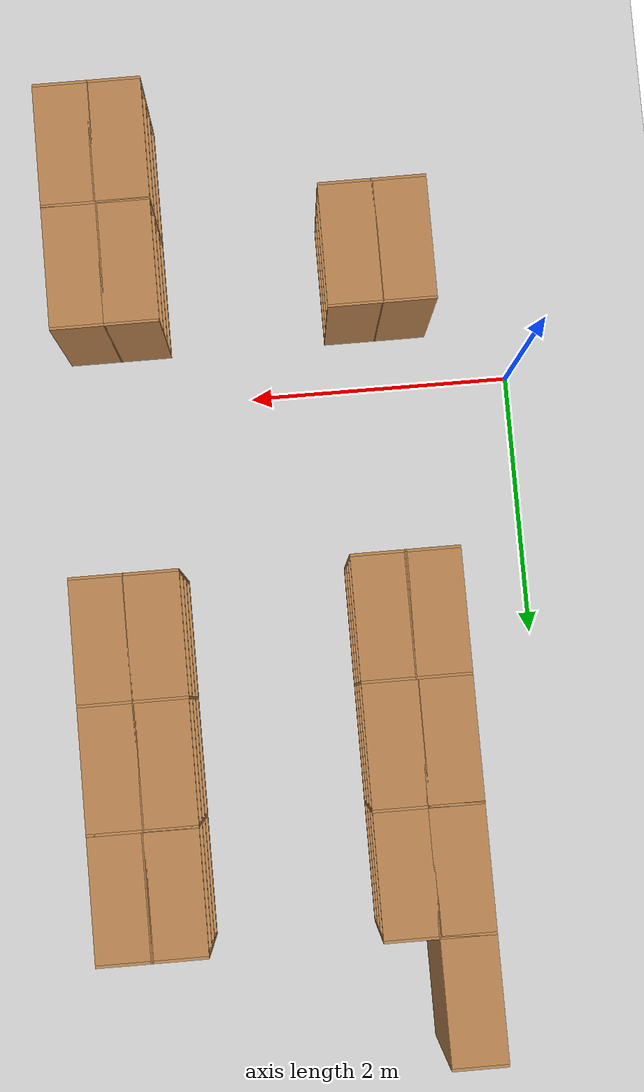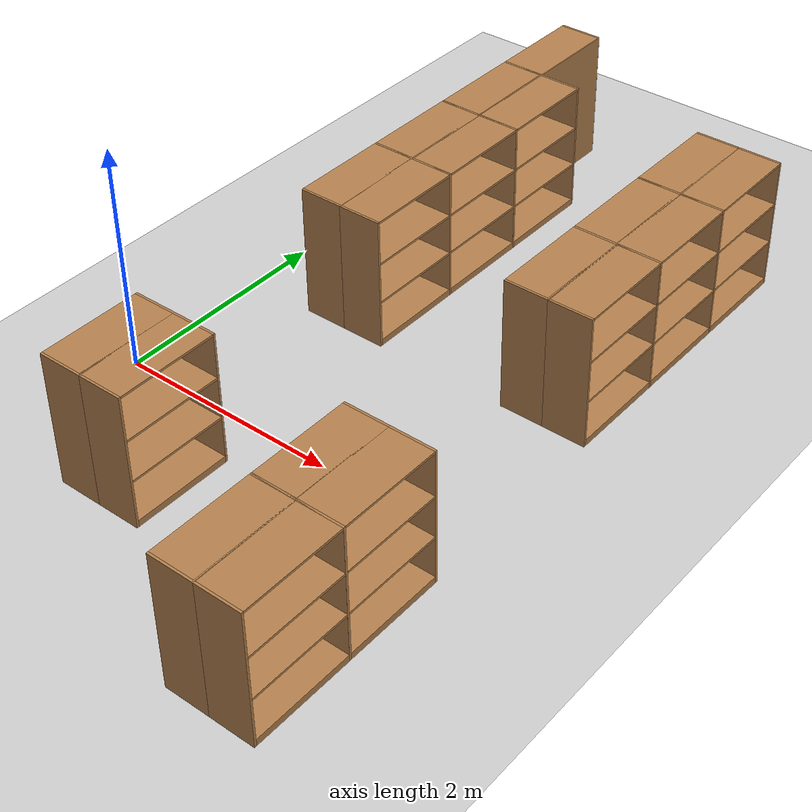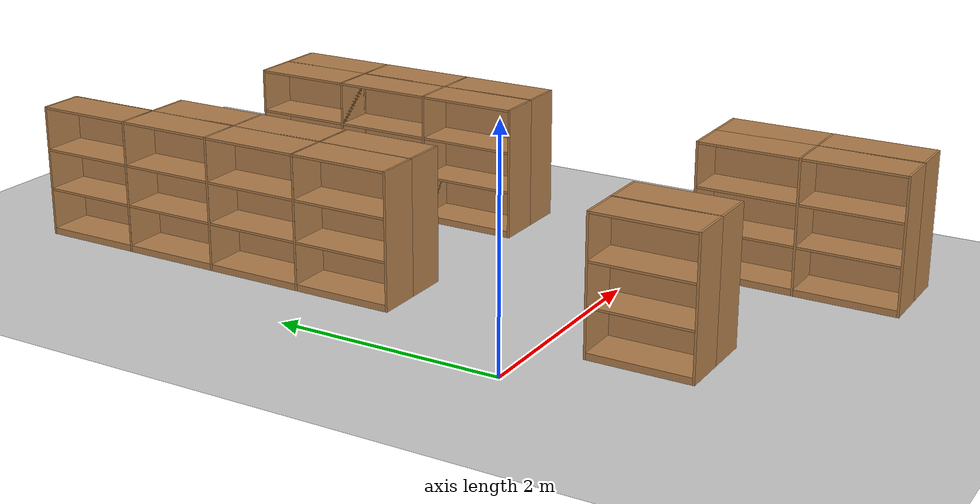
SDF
<sdf version="1.7">
 <world name="default">
  <model name="ground_plane">
   <static>1</static>
   <link name="link">
    <collision name="collision">
     <geometry><plane><normal>0 0 1</normal><size>100 100</size></plane></geometry>
     <surface><friction><ode><mu>100</mu><mu2>50</mu2></ode></friction></surface>
    </collision>
    <visual name="visual">
     <cast_shadows>0</cast_shadows>
     <geometry><plane><normal>0 0 1</normal><size>100 100</size></plane></geometry>
     <material>
      <script><uri>file://media/materials/scripts/gazebo.material</uri><name>Gazebo/Grey</name></script>
     </material>
    </visual>
   </link>
  </model>
  <model name="sec3_A_1">
   <static>1</static>
   <link name="link">
    <inertial><mass>1</mass></inertial>
    <visual name="visual1">
     <pose>0 0.005 0.6 0 -0 0</pose>
     <geometry><box><size>0.9 0.01 1.2</size></box></geometry>
     <material>
      <script><uri>file://media/materials/scripts/gazebo.material</uri><name>Gazebo/Wood</name></script>
     </material>
    </visual>
    <visual name="visual2">
     <pose>0.45 -0.195 0.6 0 -0 0</pose>
     <geometry><box><size>0.02 0.4 1.2</size></box></geometry>
     <material>
      <script><uri>file://media/materials/scripts/gazebo.material</uri><name>Gazebo/Wood</name></script>
     </material>
    </visual>
    <visual name="visual3">
     <pose>-0.45 -0.195 0.6 0 -0 0</pose>
     <geometry><box><size>0.02 0.4 1.2</size></box></geometry>
     <material>
      <script><uri>file://media/materials/scripts/gazebo.material</uri><name>Gazebo/Wood</name></script>
     </material>
    </visual>
    <visual name="visual4">
     <pose>0 -0.195 0.03 0 -0 0</pose>
     <geometry><box><size>0.88 0.4 0.06</size></box></geometry>
     <material>
      <script><uri>file://media/materials/scripts/gazebo.material</uri><name>Gazebo/Wood</name></script>
     </material>
    </visual>
    <visual name="visual5">
     <pose>0 -0.195 1.19 0 -0 0</pose>
     <geometry><box><size>0.88 0.4 0.02</size></box></geometry>
     <material>
      <script><uri>file://media/materials/scripts/gazebo.material</uri><name>Gazebo/Wood</name></script>
     </material>
    </visual>
    <visual name="visual6">
     <pose>0 -0.195 0.43 0 -0 0</pose>
     <geometry><box><size>0.88 0.4 0.02</size></box></geometry>
     <material>
      <script><uri>file://media/materials/scripts/gazebo.material</uri><name>Gazebo/Wood</name></script>
     </material>
    </visual>
    <visual name="visual7">
     <pose>0 -0.195 0.8 0 -0 0</pose>
     <geometry><box><size>0.88 0.4 0.02</size></box></geometry>
     <material>
      <script><uri>file://media/materials/scripts/gazebo.material</uri><name>Gazebo/Wood</name></script>
     </material>
    </visual>
    <collision name="unified_hitbox">
     <pose>0 -0.1925 0.6 0 -0 0</pose>
     <geometry><box><size>0.92 0.405 1.2</size></box></geometry>
    </collision>
   </link>
   <pose>3 3.65 0 0 -0 1.57</pose>
  </model>
  <model name="sec3_A_2">
   <static>1</static>
   <link name="link">
    <inertial><mass>1</mass></inertial>
    <visual name="visual1">
     <pose>0 0.005 0.6 0 -0 0</pose>
     <geometry><box><size>0.9 0.01 1.2</size></box></geometry>
     <material>
      <script><uri>file://media/materials/scripts/gazebo.material</uri><name>Gazebo/Wood</name></script>
     </material>
    </visual>
    <visual name="visual2">
     <pose>0.45 -0.195 0.6 0 -0 0</pose>
     <geometry><box><size>0.02 0.4 1.2</size></box></geometry>
     <material>
      <script><uri>file://media/materials/scripts/gazebo.material</uri><name>Gazebo/Wood</name></script>
     </material>
    </visual>
    <visual name="visual3">
     <pose>-0.45 -0.195 0.6 0 -0 0</pose>
     <geometry><box><size>0.02 0.4 1.2</size></box></geometry>
     <material>
      <script><uri>file://media/materials/scripts/gazebo.material</uri><name>Gazebo/Wood</name></script>
     </material>
    </visual>
    <visual name="visual4">
     <pose>0 -0.195 0.03 0 -0 0</pose>
     <geometry><box><size>0.88 0.4 0.06</size></box></geometry>
     <material>
      <script><uri>file://media/materials/scripts/gazebo.material</uri><name>Gazebo/Wood</name></script>
     </material>
    </visual>
    <visual name="visual5">
     <pose>0 -0.195 1.19 0 -0 0</pose>
     <geometry><box><size>0.88 0.4 0.02</size></box></geometry>
     <material>
      <script><uri>file://media/materials/scripts/gazebo.material</uri><name>Gazebo/Wood</name></script>
     </material>
    </visual>
    <visual name="visual6">
     <pose>0 -0.195 0.43 0 -0 0</pose>
     <geometry><box><size>0.88 0.4 0.02</size></box></geometry>
     <material>
      <script><uri>file://media/materials/scripts/gazebo.material</uri><name>Gazebo/Wood</name></script>
     </material>
    </visual>
    <visual name="visual7">
     <pose>0 -0.195 0.8 0 -0 0</pose>
     <geometry><box><size>0.88 0.4 0.02</size></box></geometry>
     <material>
      <script><uri>file://media/materials/scripts/gazebo.material</uri><name>Gazebo/Wood</name></script>
     </material>
    </visual>
    <collision name="unified_hitbox">
     <pose>0 -0.1925 0.6 0 -0 0</pose>
     <geometry><box><size>0.92 0.405 1.2</size></box></geometry>
    </collision>
   </link>
   <pose>3 2.75 0 0 -0 1.57</pose>
  </model>
  <model name="sec3_B_1">
   <static>1</static>
   <link name="link">
    <inertial><mass>1</mass></inertial>
    <visual name="visual1">
     <pose>0 0.005 0.6 0 -0 0</pose>
     <geometry><box><size>0.9 0.01 1.2</size></box></geometry>
     <material>
      <script><uri>file://media/materials/scripts/gazebo.material</uri><name>Gazebo/Wood</name></script>
     </material>
    </visual>
    <visual name="visual2">
     <pose>0.45 -0.195 0.6 0 -0 0</pose>
     <geometry><box><size>0.02 0.4 1.2</size></box></geometry>
     <material>
      <script><uri>file://media/materials/scripts/gazebo.material</uri><name>Gazebo/Wood</name></script>
     </material>
    </visual>
    <visual name="visual3">
     <pose>-0.45 -0.195 0.6 0 -0 0</pose>
     <geometry><box><size>0.02 0.4 1.2</size></box></geometry>
     <material>
      <script><uri>file://media/materials/scripts/gazebo.material</uri><name>Gazebo/Wood</name></script>
     </material>
    </visual>
    <visual name="visual4">
     <pose>0 -0.195 0.03 0 -0 0</pose>
     <geometry><box><size>0.88 0.4 0.06</size></box></geometry>
     <material>
      <script><uri>file://media/materials/scripts/gazebo.material</uri><name>Gazebo/Wood</name></script>
     </material>
    </visual>
    <visual name="visual5">
     <pose>0 -0.195 1.19 0 -0 0</pose>
     <geometry><box><size>0.88 0.4 0.02</size></box></geometry>
     <material>
      <script><uri>file://media/materials/scripts/gazebo.material</uri><name>Gazebo/Wood</name></script>
     </material>
    </visual>
    <visual name="visual6">
     <pose>0 -0.195 0.43 0 -0 0</pose>
     <geometry><box><size>0.88 0.4 0.02</size></box></geometry>
     <material>
      <script><uri>file://media/materials/scripts/gazebo.material</uri><name>Gazebo/Wood</name></script>
     </material>
    </visual>
    <visual name="visual7">
     <pose>0 -0.195 0.8 0 -0 0</pose>
     <geometry><box><size>0.88 0.4 0.02</size></box></geometry>
     <material>
      <script><uri>file://media/materials/scripts/gazebo.material</uri><name>Gazebo/Wood</name></script>
     </material>
    </visual>
    <collision name="unified_hitbox">
     <pose>0 -0.1925 0.6 0 -0 0</pose>
     <geometry><box><size>0.92 0.405 1.2</size></box></geometry>
    </collision>
   </link>
   <pose>3 3.65 0 0 0 -1.57</pose>
  </model>
  <model name="sec3_B_2">
   <static>1</static>
   <link name="link">
    <inertial><mass>1</mass></inertial>
    <visual name="visual1">
     <pose>0 0.005 0.6 0 -0 0</pose>
     <geometry><box><size>0.9 0.01 1.2</size></box></geometry>
     <material>
      <script><uri>file://media/materials/scripts/gazebo.material</uri><name>Gazebo/Wood</name></script>
     </material>
    </visual>
    <visual name="visual2">
     <pose>0.45 -0.195 0.6 0 -0 0</pose>
     <geometry><box><size>0.02 0.4 1.2</size></box></geometry>
     <material>
      <script><uri>file://media/materials/scripts/gazebo.material</uri><name>Gazebo/Wood</name></script>
     </material>
    </visual>
    <visual name="visual3">
     <pose>-0.45 -0.195 0.6 0 -0 0</pose>
     <geometry><box><size>0.02 0.4 1.2</size></box></geometry>
     <material>
      <script><uri>file://media/materials/scripts/gazebo.material</uri><name>Gazebo/Wood</name></script>
     </material>
    </visual>
    <visual name="visual4">
     <pose>0 -0.195 0.03 0 -0 0</pose>
     <geometry><box><size>0.88 0.4 0.06</size></box></geometry>
     <material>
      <script><uri>file://media/materials/scripts/gazebo.material</uri><name>Gazebo/Wood</name></script>
     </material>
    </visual>
    <visual name="visual5">
     <pose>0 -0.195 1.19 0 -0 0</pose>
     <geometry><box><size>0.88 0.4 0.02</size></box></geometry>
     <material>
      <script><uri>file://media/materials/scripts/gazebo.material</uri><name>Gazebo/Wood</name></script>
     </material>
    </visual>
    <visual name="visual6">
     <pose>0 -0.195 0.43 0 -0 0</pose>
     <geometry><box><size>0.88 0.4 0.02</size></box></geometry>
     <material>
      <script><uri>file://media/materials/scripts/gazebo.material</uri><name>Gazebo/Wood</name></script>
     </material>
    </visual>
    <visual name="visual7">
     <pose>0 -0.195 0.8 0 -0 0</pose>
     <geometry><box><size>0.88 0.4 0.02</size></box></geometry>
     <material>
      <script><uri>file://media/materials/scripts/gazebo.material</uri><name>Gazebo/Wood</name></script>
     </material>
    </visual>
    <collision name="unified_hitbox">
     <pose>0 -0.1925 0.6 0 -0 0</pose>
     <geometry><box><size>0.92 0.405 1.2</size></box></geometry>
    </collision>
   </link>
   <pose>3 2.75 0 0 0 -1.57</pose>
  </model>
  <model name="sec1_A_1">
   <static>1</static>
   <link name="link">
    <inertial><mass>1</mass></inertial>
    <visual name="visual1">
     <pose>0 0.005 0.6 0 -0 0</pose>
     <geometry><box><size>0.9 0.01 1.2</size></box></geometry>
     <material>
      <script><uri>file://media/materials/scripts/gazebo.material</uri><name>Gazebo/Wood</name></script>
     </material>
    </visual>
    <visual name="visual2">
     <pose>0.45 -0.195 0.6 0 -0 0</pose>
     <geometry><box><size>0.02 0.4 1.2</size></box></geometry>
     <material>
      <script><uri>file://media/materials/scripts/gazebo.material</uri><name>Gazebo/Wood</name></script>
     </material>
    </visual>
    <visual name="visual3">
     <pose>-0.45 -0.195 0.6 0 -0 0</pose>
     <geometry><box><size>0.02 0.4 1.2</size></box></geometry>
     <material>
      <script><uri>file://media/materials/scripts/gazebo.material</uri><name>Gazebo/Wood</name></script>
     </material>
    </visual>
    <visual name="visual4">
     <pose>0 -0.195 0.03 0 -0 0</pose>
     <geometry><box><size>0.88 0.4 0.06</size></box></geometry>
     <material>
      <script><uri>file://media/materials/scripts/gazebo.material</uri><name>Gazebo/Wood</name></script>
     </material>
    </visual>
    <visual name="visual5">
     <pose>0 -0.195 1.19 0 -0 0</pose>
     <geometry><box><size>0.88 0.4 0.02</size></box></geometry>
     <material>
      <script><uri>file://media/materials/scripts/gazebo.material</uri><name>Gazebo/Wood</name></script>
     </material>
    </visual>
    <visual name="visual6">
     <pose>0 -0.195 0.43 0 -0 0</pose>
     <geometry><box><size>0.88 0.4 0.02</size></box></geometry>
     <material>
      <script><uri>file://media/materials/scripts/gazebo.material</uri><name>Gazebo/Wood</name></script>
     </material>
    </visual>
    <visual name="visual7">
     <pose>0 -0.195 0.8 0 -0 0</pose>
     <geometry><box><size>0.88 0.4 0.02</size></box></geometry>
     <material>
      <script><uri>file://media/materials/scripts/gazebo.material</uri><name>Gazebo/Wood</name></script>
     </material>
    </visual>
    <collision name="unified_hitbox">
     <pose>0 -0.1925 0.6 0 -0 0</pose>
     <geometry><box><size>0.92 0.405 1.2</size></box></geometry>
    </collision>
   </link>
   <pose>1 3.65 0 0 -0 1.57</pose>
  </model>
  <model name="sec1_A_2">
   <static>1</static>
   <link name="link">
    <inertial><mass>1</mass></inertial>
    <visual name="visual1">
     <pose>0 0.005 0.6 0 -0 0</pose>
     <geometry><box><size>0.9 0.01 1.2</size></box></geometry>
     <material>
      <script><uri>file://media/materials/scripts/gazebo.material</uri><name>Gazebo/Wood</name></script>
     </material>
    </visual>
    <visual name="visual2">
     <pose>0.45 -0.195 0.6 0 -0 0</pose>
     <geometry><box><size>0.02 0.4 1.2</size></box></geometry>
     <material>
      <script><uri>file://media/materials/scripts/gazebo.material</uri><name>Gazebo/Wood</name></script>
     </material>
    </visual>
    <visual name="visual3">
     <pose>-0.45 -0.195 0.6 0 -0 0</pose>
     <geometry><box><size>0.02 0.4 1.2</size></box></geometry>
     <material>
      <script><uri>file://media/materials/scripts/gazebo.material</uri><name>Gazebo/Wood</name></script>
     </material>
    </visual>
    <visual name="visual4">
     <pose>0 -0.195 0.03 0 -0 0</pose>
     <geometry><box><size>0.88 0.4 0.06</size></box></geometry>
     <material>
      <script><uri>file://media/materials/scripts/gazebo.material</uri><name>Gazebo/Wood</name></script>
     </material>
    </visual>
    <visual name="visual5">
     <pose>0 -0.195 1.19 0 -0 0</pose>
     <geometry><box><size>0.88 0.4 0.02</size></box></geometry>
     <material>
      <script><uri>file://media/materials/scripts/gazebo.material</uri><name>Gazebo/Wood</name></script>
     </material>
    </visual>
    <visual name="visual6">
     <pose>0 -0.195 0.43 0 -0 0</pose>
     <geometry><box><size>0.88 0.4 0.02</size></box></geometry>
     <material>
      <script><uri>file://media/materials/scripts/gazebo.material</uri><name>Gazebo/Wood</name></script>
     </material>
    </visual>
    <visual name="visual7">
     <pose>0 -0.195 0.8 0 -0 0</pose>
     <geometry><box><size>0.88 0.4 0.02</size></box></geometry>
     <material>
      <script><uri>file://media/materials/scripts/gazebo.material</uri><name>Gazebo/Wood</name></script>
     </material>
    </visual>
    <collision name="unified_hitbox">
     <pose>0 -0.1925 0.6 0 -0 0</pose>
     <geometry><box><size>0.92 0.405 1.2</size></box></geometry>
    </collision>
   </link>
   <pose>1 2.75 0 0 -0 1.57</pose>
  </model>
  <model name="sec1_B_0">
   <static>1</static>
   <link name="link">
    <inertial><mass>1</mass></inertial>
    <visual name="visual1">
     <pose>0 0.005 0.6 0 -0 0</pose>
     <geometry><box><size>0.9 0.01 1.2</size></box></geometry>
     <material>
      <script><uri>file://media/materials/scripts/gazebo.material</uri><name>Gazebo/Wood</name></script>
     </material>
    </visual>
    <visual name="visual2">
     <pose>0.45 -0.195 0.6 0 -0 0</pose>
     <geometry><box><size>0.02 0.4 1.2</size></box></geometry>
     <material>
      <script><uri>file://media/materials/scripts/gazebo.material</uri><name>Gazebo/Wood</name></script>
     </material>
    </visual>
    <visual name="visual3">
     <pose>-0.45 -0.195 0.6 0 -0 0</pose>
     <geometry><box><size>0.02 0.4 1.2</size></box></geometry>
     <material>
      <script><uri>file://media/materials/scripts/gazebo.material</uri><name>Gazebo/Wood</name></script>
     </material>
    </visual>
    <visual name="visual4">
     <pose>0 -0.195 0.03 0 -0 0</pose>
     <geometry><box><size>0.88 0.4 0.06</size></box></geometry>
     <material>
      <script><uri>file://media/materials/scripts/gazebo.material</uri><name>Gazebo/Wood</name></script>
     </material>
    </visual>
    <visual name="visual5">
     <pose>0 -0.195 1.19 0 -0 0</pose>
     <geometry><box><size>0.88 0.4 0.02</size></box></geometry>
     <material>
      <script><uri>file://media/materials/scripts/gazebo.material</uri><name>Gazebo/Wood</name></script>
     </material>
    </visual>
    <visual name="visual6">
     <pose>0 -0.195 0.43 0 -0 0</pose>
     <geometry><box><size>0.88 0.4 0.02</size></box></geometry>
     <material>
      <script><uri>file://media/materials/scripts/gazebo.material</uri><name>Gazebo/Wood</name></script>
     </material>
    </visual>
    <visual name="visual7">
     <pose>0 -0.195 0.8 0 -0 0</pose>
     <geometry><box><size>0.88 0.4 0.02</size></box></geometry>
     <material>
      <script><uri>file://media/materials/scripts/gazebo.material</uri><name>Gazebo/Wood</name></script>
     </material>
    </visual>
    <collision name="unified_hitbox">
     <pose>0 -0.1925 0.6 0 -0 0</pose>
     <geometry><box><size>0.92 0.405 1.2</size></box></geometry>
    </collision>
   </link>
   <pose>1 4.55 0 0 0 -1.57</pose>
  </model>
  <model name="sec1_B_1">
   <static>1</static>
   <link name="link">
    <inertial><mass>1</mass></inertial>
    <visual name="visual1">
     <pose>0 0.005 0.6 0 -0 0</pose>
     <geometry><box><size>0.9 0.01 1.2</size></box></geometry>
     <material>
      <script><uri>file://media/materials/scripts/gazebo.material</uri><name>Gazebo/Wood</name></script>
     </material>
    </visual>
    <visual name="visual2">
     <pose>0.45 -0.195 0.6 0 -0 0</pose>
     <geometry><box><size>0.02 0.4 1.2</size></box></geometry>
     <material>
      <script><uri>file://media/materials/scripts/gazebo.material</uri><name>Gazebo/Wood</name></script>
     </material>
    </visual>
    <visual name="visual3">
     <pose>-0.45 -0.195 0.6 0 -0 0</pose>
     <geometry><box><size>0.02 0.4 1.2</size></box></geometry>
     <material>
      <script><uri>file://media/materials/scripts/gazebo.material</uri><name>Gazebo/Wood</name></script>
     </material>
    </visual>
    <visual name="visual4">
     <pose>0 -0.195 0.03 0 -0 0</pose>
     <geometry><box><size>0.88 0.4 0.06</size></box></geometry>
     <material>
      <script><uri>file://media/materials/scripts/gazebo.material</uri><name>Gazebo/Wood</name></script>
     </material>
    </visual>
    <visual name="visual5">
     <pose>0 -0.195 1.19 0 -0 0</pose>
     <geometry><box><size>0.88 0.4 0.02</size></box></geometry>
     <material>
      <script><uri>file://media/materials/scripts/gazebo.material</uri><name>Gazebo/Wood</name></script>
     </material>
    </visual>
    <visual name="visual6">
     <pose>0 -0.195 0.43 0 -0 0</pose>
     <geometry><box><size>0.88 0.4 0.02</size></box></geometry>
     <material>
      <script><uri>file://media/materials/scripts/gazebo.material</uri><name>Gazebo/Wood</name></script>
     </material>
    </visual>
    <visual name="visual7">
     <pose>0 -0.195 0.8 0 -0 0</pose>
     <geometry><box><size>0.88 0.4 0.02</size></box></geometry>
     <material>
      <script><uri>file://media/materials/scripts/gazebo.material</uri><name>Gazebo/Wood</name></script>
     </material>
    </visual>
    <collision name="unified_hitbox">
     <pose>0 -0.1925 0.6 0 -0 0</pose>
     <geometry><box><size>0.92 0.405 1.2</size></box></geometry>
    </collision>
   </link>
   <pose>1 3.65 0 0 0 -1.57</pose>
  </model>
  <model name="sec1_B_2">
   <static>1</static>
   <link name="link">
    <inertial><mass>1</mass></inertial>
    <visual name="visual1">
     <pose>0 0.005 0.6 0 -0 0</pose>
     <geometry><box><size>0.9 0.01 1.2</size></box></geometry>
     <material>
      <script><uri>file://media/materials/scripts/gazebo.material</uri><name>Gazebo/Wood</name></script>
     </material>
    </visual>
    <visual name="visual2">
     <pose>0.45 -0.195 0.6 0 -0 0</pose>
     <geometry><box><size>0.02 0.4 1.2</size></box></geometry>
     <material>
      <script><uri>file://media/materials/scripts/gazebo.material</uri><name>Gazebo/Wood</name></script>
     </material>
    </visual>
    <visual name="visual3">
     <pose>-0.45 -0.195 0.6 0 -0 0</pose>
     <geometry><box><size>0.02 0.4 1.2</size></box></geometry>
     <material>
      <script><uri>file://media/materials/scripts/gazebo.material</uri><name>Gazebo/Wood</name></script>
     </material>
    </visual>
    <visual name="visual4">
     <pose>0 -0.195 0.03 0 -0 0</pose>
     <geometry><box><size>0.88 0.4 0.06</size></box></geometry>
     <material>
      <script><uri>file://media/materials/scripts/gazebo.material</uri><name>Gazebo/Wood</name></script>
     </material>
    </visual>
    <visual name="visual5">
     <pose>0 -0.195 1.19 0 -0 0</pose>
     <geometry><box><size>0.88 0.4 0.02</size></box></geometry>
     <material>
      <script><uri>file://media/materials/scripts/gazebo.material</uri><name>Gazebo/Wood</name></script>
     </material>
    </visual>
    <visual name="visual6">
     <pose>0 -0.195 0.43 0 -0 0</pose>
     <geometry><box><size>0.88 0.4 0.02</size></box></geometry>
     <material>
      <script><uri>file://media/materials/scripts/gazebo.material</uri><name>Gazebo/Wood</name></script>
     </material>
    </visual>
    <visual name="visual7">
     <pose>0 -0.195 0.8 0 -0 0</pose>
     <geometry><box><size>0.88 0.4 0.02</size></box></geometry>
     <material>
      <script><uri>file://media/materials/scripts/gazebo.material</uri><name>Gazebo/Wood</name></script>
     </material>
    </visual>
    <collision name="unified_hitbox">
     <pose>0 -0.1925 0.6 0 -0 0</pose>
     <geometry><box><size>0.92 0.405 1.2</size></box></geometry>
    </collision>
   </link>
   <pose>1 2.75 0 0 0 -1.57</pose>
  </model>
  <model name="sec3_A_3">
   <static>1</static>
   <link name="link">
    <inertial><mass>1</mass></inertial>
    <visual name="visual1">
     <pose>0 0.005 0.6 0 -0 0</pose>
     <geometry><box><size>0.9 0.01 1.2</size></box></geometry>
     <material>
      <script><uri>file://media/materials/scripts/gazebo.material</uri><name>Gazebo/Wood</name></script>
     </material>
    </visual>
    <visual name="visual2">
     <pose>0.45 -0.195 0.6 0 -0 0</pose>
     <geometry><box><size>0.02 0.4 1.2</size></box></geometry>
     <material>
      <script><uri>file://media/materials/scripts/gazebo.material</uri><name>Gazebo/Wood</name></script>
     </material>
    </visual>
    <visual name="visual3">
     <pose>-0.45 -0.195 0.6 0 -0 0</pose>
     <geometry><box><size>0.02 0.4 1.2</size></box></geometry>
     <material>
      <script><uri>file://media/materials/scripts/gazebo.material</uri><name>Gazebo/Wood</name></script>
     </material>
    </visual>
    <visual name="visual4">
     <pose>0 -0.195 0.03 0 -0 0</pose>
     <geometry><box><size>0.88 0.4 0.06</size></box></geometry>
     <material>
      <script><uri>file://media/materials/scripts/gazebo.material</uri><name>Gazebo/Wood</name></script>
     </material>
    </visual>
    <visual name="visual5">
     <pose>0 -0.195 1.19 0 -0 0</pose>
     <geometry><box><size>0.88 0.4 0.02</size></box></geometry>
     <material>
      <script><uri>file://media/materials/scripts/gazebo.material</uri><name>Gazebo/Wood</name></script>
     </material>
    </visual>
    <visual name="visual6">
     <pose>0 -0.195 0.43 0 -0 0</pose>
     <geometry><box><size>0.88 0.4 0.02</size></box></geometry>
     <material>
      <script><uri>file://media/materials/scripts/gazebo.material</uri><name>Gazebo/Wood</name></script>
     </material>
    </visual>
    <visual name="visual7">
     <pose>0 -0.195 0.8 0 -0 0</pose>
     <geometry><box><size>0.88 0.4 0.02</size></box></geometry>
     <material>
      <script><uri>file://media/materials/scripts/gazebo.material</uri><name>Gazebo/Wood</name></script>
     </material>
    </visual>
    <collision name="unified_hitbox">
     <pose>0 -0.1925 0.6 0 -0 0</pose>
     <geometry><box><size>0.92 0.405 1.2</size></box></geometry>
    </collision>
   </link>
   <pose>3 1.85 0 0 -0 1.57</pose>
  </model>
  <model name="sec3_B_3">
   <static>1</static>
   <link name="link">
    <inertial><mass>1</mass></inertial>
    <visual name="visual1">
     <pose>0 0.005 0.6 0 -0 0</pose>
     <geometry><box><size>0.9 0.01 1.2</size></box></geometry>
     <material>
      <script><uri>file://media/materials/scripts/gazebo.material</uri><name>Gazebo/Wood</name></script>
     </material>
    </visual>
    <visual name="visual2">
     <pose>0.45 -0.195 0.6 0 -0 0</pose>
     <geometry><box><size>0.02 0.4 1.2</size></box></geometry>
     <material>
      <script><uri>file://media/materials/scripts/gazebo.material</uri><name>Gazebo/Wood</name></script>
     </material>
    </visual>
    <visual name="visual3">
     <pose>-0.45 -0.195 0.6 0 -0 0</pose>
     <geometry><box><size>0.02 0.4 1.2</size></box></geometry>
     <material>
      <script><uri>file://media/materials/scripts/gazebo.material</uri><name>Gazebo/Wood</name></script>
     </material>
    </visual>
    <visual name="visual4">
     <pose>0 -0.195 0.03 0 -0 0</pose>
     <geometry><box><size>0.88 0.4 0.06</size></box></geometry>
     <material>
      <script><uri>file://media/materials/scripts/gazebo.material</uri><name>Gazebo/Wood</name></script>
     </material>
    </visual>
    <visual name="visual5">
     <pose>0 -0.195 1.19 0 -0 0</pose>
     <geometry><box><size>0.88 0.4 0.02</size></box></geometry>
     <material>
      <script><uri>file://media/materials/scripts/gazebo.material</uri><name>Gazebo/Wood</name></script>
     </material>
    </visual>
    <visual name="visual6">
     <pose>0 -0.195 0.43 0 -0 0</pose>
     <geometry><box><size>0.88 0.4 0.02</size></box></geometry>
     <material>
      <script><uri>file://media/materials/scripts/gazebo.material</uri><name>Gazebo/Wood</name></script>
     </material>
    </visual>
    <visual name="visual7">
     <pose>0 -0.195 0.8 0 -0 0</pose>
     <geometry><box><size>0.88 0.4 0.02</size></box></geometry>
     <material>
      <script><uri>file://media/materials/scripts/gazebo.material</uri><name>Gazebo/Wood</name></script>
     </material>
    </visual>
    <collision name="unified_hitbox">
     <pose>0 -0.1925 0.6 0 -0 0</pose>
     <geometry><box><size>0.92 0.405 1.2</size></box></geometry>
    </collision>
   </link>
   <pose>3 1.85 0 0 0 -1.57</pose>
  </model>
  <model name="sec1_A_3">
   <static>1</static>
   <link name="link">
    <inertial><mass>1</mass></inertial>
    <visual name="visual1">
     <pose>0 0.005 0.6 0 -0 0</pose>
     <geometry><box><size>0.9 0.01 1.2</size></box></geometry>
     <material>
      <script><uri>file://media/materials/scripts/gazebo.material</uri><name>Gazebo/Wood</name></script>
     </material>
    </visual>
    <visual name="visual2">
     <pose>0.45 -0.195 0.6 0 -0 0</pose>
     <geometry><box><size>0.02 0.4 1.2</size></box></geometry>
     <material>
      <script><uri>file://media/materials/scripts/gazebo.material</uri><name>Gazebo/Wood</name></script>
     </material>
    </visual>
    <visual name="visual3">
     <pose>-0.45 -0.195 0.6 0 -0 0</pose>
     <geometry><box><size>0.02 0.4 1.2</size></box></geometry>
     <material>
      <script><uri>file://media/materials/scripts/gazebo.material</uri><name>Gazebo/Wood</name></script>
     </material>
    </visual>
    <visual name="visual4">
     <pose>0 -0.195 0.03 0 -0 0</pose>
     <geometry><box><size>0.88 0.4 0.06</size></box></geometry>
     <material>
      <script><uri>file://media/materials/scripts/gazebo.material</uri><name>Gazebo/Wood</name></script>
     </material>
    </visual>
    <visual name="visual5">
     <pose>0 -0.195 1.19 0 -0 0</pose>
     <geometry><box><size>0.88 0.4 0.02</size></box></geometry>
     <material>
      <script><uri>file://media/materials/scripts/gazebo.material</uri><name>Gazebo/Wood</name></script>
     </material>
    </visual>
    <visual name="visual6">
     <pose>0 -0.195 0.43 0 -0 0</pose>
     <geometry><box><size>0.88 0.4 0.02</size></box></geometry>
     <material>
      <script><uri>file://media/materials/scripts/gazebo.material</uri><name>Gazebo/Wood</name></script>
     </material>
    </visual>
    <visual name="visual7">
     <pose>0 -0.195 0.8 0 -0 0</pose>
     <geometry><box><size>0.88 0.4 0.02</size></box></geometry>
     <material>
      <script><uri>file://media/materials/scripts/gazebo.material</uri><name>Gazebo/Wood</name></script>
     </material>
    </visual>
    <collision name="unified_hitbox">
     <pose>0 -0.1925 0.6 0 -0 0</pose>
     <geometry><box><size>0.92 0.405 1.2</size></box></geometry>
    </collision>
   </link>
   <pose>1 1.85 0 0 -0 1.57</pose>
  </model>
  <model name="sec1_B_3">
   <static>1</static>
   <link name="link">
    <inertial><mass>1</mass></inertial>
    <visual name="visual1">
     <pose>0 0.005 0.6 0 -0 0</pose>
     <geometry><box><size>0.9 0.01 1.2</size></box></geometry>
     <material>
      <script><uri>file://media/materials/scripts/gazebo.material</uri><name>Gazebo/Wood</name></script>
     </material>
    </visual>
    <visual name="visual2">
     <pose>0.45 -0.195 0.6 0 -0 0</pose>
     <geometry><box><size>0.02 0.4 1.2</size></box></geometry>
     <material>
      <script><uri>file://media/materials/scripts/gazebo.material</uri><name>Gazebo/Wood</name></script>
     </material>
    </visual>
    <visual name="visual3">
     <pose>-0.45 -0.195 0.6 0 -0 0</pose>
     <geometry><box><size>0.02 0.4 1.2</size></box></geometry>
     <material>
      <script><uri>file://media/materials/scripts/gazebo.material</uri><name>Gazebo/Wood</name></script>
     </material>
    </visual>
    <visual name="visual4">
     <pose>0 -0.195 0.03 0 -0 0</pose>
     <geometry><box><size>0.88 0.4 0.06</size></box></geometry>
     <material>
      <script><uri>file://media/materials/scripts/gazebo.material</uri><name>Gazebo/Wood</name></script>
     </material>
    </visual>
    <visual name="visual5">
     <pose>0 -0.195 1.19 0 -0 0</pose>
     <geometry><box><size>0.88 0.4 0.02</size></box></geometry>
     <material>
      <script><uri>file://media/materials/scripts/gazebo.material</uri><name>Gazebo/Wood</name></script>
     </material>
    </visual>
    <visual name="visual6">
     <pose>0 -0.195 0.43 0 -0 0</pose>
     <geometry><box><size>0.88 0.4 0.02</size></box></geometry>
     <material>
      <script><uri>file://media/materials/scripts/gazebo.material</uri><name>Gazebo/Wood</name></script>
     </material>
    </visual>
    <visual name="visual7">
     <pose>0 -0.195 0.8 0 -0 0</pose>
     <geometry><box><size>0.88 0.4 0.02</size></box></geometry>
     <material>
      <script><uri>file://media/materials/scripts/gazebo.material</uri><name>Gazebo/Wood</name></script>
     </material>
    </visual>
    <collision name="unified_hitbox">
     <pose>0 -0.1925 0.6 0 -0 0</pose>
     <geometry><box><size>0.92 0.405 1.2</size></box></geometry>
    </collision>
   </link>
   <pose>1 1.85 0 0 0 -1.57</pose>
  </model>
  <model name="bot_sec3_A_0">
   <static>1</static>
   <link name="link">
    <inertial><mass>1</mass></inertial>
    <visual name="visual1">
     <pose>0 0.005 0.6 0 -0 0</pose>
     <geometry><box><size>0.9 0.01 1.2</size></box></geometry>
     <material>
      <script><uri>file://media/materials/scripts/gazebo.material</uri><name>Gazebo/Wood</name></script>
     </material>
    </visual>
    <visual name="visual2">
     <pose>0.45 -0.195 0.6 0 -0 0</pose>
     <geometry><box><size>0.02 0.4 1.2</size></box></geometry>
     <material>
      <script><uri>file://media/materials/scripts/gazebo.material</uri><name>Gazebo/Wood</name></script>
     </material>
    </visual>
    <visual name="visual3">
     <pose>-0.45 -0.195 0.6 0 -0 0</pose>
     <geometry><box><size>0.02 0.4 1.2</size></box></geometry>
     <material>
      <script><uri>file://media/materials/scripts/gazebo.material</uri><name>Gazebo/Wood</name></script>
     </material>
    </visual>
    <visual name="visual4">
     <pose>0 -0.195 0.03 0 -0 0</pose>
     <geometry><box><size>0.88 0.4 0.06</size></box></geometry>
     <material>
      <script><uri>file://media/materials/scripts/gazebo.material</uri><name>Gazebo/Wood</name></script>
     </material>
    </visual>
    <visual name="visual5">
     <pose>0 -0.195 1.19 0 -0 0</pose>
     <geometry><box><size>0.88 0.4 0.02</size></box></geometry>
     <material>
      <script><uri>file://media/materials/scripts/gazebo.material</uri><name>Gazebo/Wood</name></script>
     </material>
    </visual>
    <visual name="visual6">
     <pose>0 -0.195 0.43 0 -0 0</pose>
     <geometry><box><size>0.88 0.4 0.02</size></box></geometry>
     <material>
      <script><uri>file://media/materials/scripts/gazebo.material</uri><name>Gazebo/Wood</name></script>
     </material>
    </visual>
    <visual name="visual7">
     <pose>0 -0.195 0.8 0 -0 0</pose>
     <geometry><box><size>0.88 0.4 0.02</size></box></geometry>
     <material>
      <script><uri>file://media/materials/scripts/gazebo.material</uri><name>Gazebo/Wood</name></script>
     </material>
    </visual>
    <collision name="unified_hitbox">
     <pose>0 -0.1925 0.6 0 -0 0</pose>
     <geometry><box><size>0.92 0.405 1.2</size></box></geometry>
    </collision>
   </link>
   <pose>3 -0.85 0 0 -0 1.57</pose>
  </model>
  <model name="bot_sec3_B_0">
   <static>1</static>
   <link name="link">
    <inertial><mass>1</mass></inertial>
    <visual name="visual1">
     <pose>0 0.005 0.6 0 -0 0</pose>
     <geometry><box><size>0.9 0.01 1.2</size></box></geometry>
     <material>
      <script><uri>file://media/materials/scripts/gazebo.material</uri><name>Gazebo/Wood</name></script>
     </material>
    </visual>
    <visual name="visual2">
     <pose>0.45 -0.195 0.6 0 -0 0</pose>
     <geometry><box><size>0.02 0.4 1.2</size></box></geometry>
     <material>
      <script><uri>file://media/materials/scripts/gazebo.material</uri><name>Gazebo/Wood</name></script>
     </material>
    </visual>
    <visual name="visual3">
     <pose>-0.45 -0.195 0.6 0 -0 0</pose>
     <geometry><box><size>0.02 0.4 1.2</size></box></geometry>
     <material>
      <script><uri>file://media/materials/scripts/gazebo.material</uri><name>Gazebo/Wood</name></script>
     </material>
    </visual>
    <visual name="visual4">
     <pose>0 -0.195 0.03 0 -0 0</pose>
     <geometry><box><size>0.88 0.4 0.06</size></box></geometry>
     <material>
      <script><uri>file://media/materials/scripts/gazebo.material</uri><name>Gazebo/Wood</name></script>
     </material>
    </visual>
    <visual name="visual5">
     <pose>0 -0.195 1.19 0 -0 0</pose>
     <geometry><box><size>0.88 0.4 0.02</size></box></geometry>
     <material>
      <script><uri>file://media/materials/scripts/gazebo.material</uri><name>Gazebo/Wood</name></script>
     </material>
    </visual>
    <visual name="visual6">
     <pose>0 -0.195 0.43 0 -0 0</pose>
     <geometry><box><size>0.88 0.4 0.02</size></box></geometry>
     <material>
      <script><uri>file://media/materials/scripts/gazebo.material</uri><name>Gazebo/Wood</name></script>
     </material>
    </visual>
    <visual name="visual7">
     <pose>0 -0.195 0.8 0 -0 0</pose>
     <geometry><box><size>0.88 0.4 0.02</size></box></geometry>
     <material>
      <script><uri>file://media/materials/scripts/gazebo.material</uri><name>Gazebo/Wood</name></script>
     </material>
    </visual>
    <collision name="unified_hitbox">
     <pose>0 -0.1925 0.6 0 -0 0</pose>
     <geometry><box><size>0.92 0.405 1.2</size></box></geometry>
    </collision>
   </link>
   <pose>3 -0.85 0 0 0 -1.57</pose>
  </model>
  <model name="bot_sec3_A_1">
   <static>1</static>
   <link name="link">
    <inertial><mass>1</mass></inertial>
    <visual name="visual1">
     <pose>0 0.005 0.6 0 -0 0</pose>
     <geometry><box><size>0.9 0.01 1.2</size></box></geometry>
     <material>
      <script><uri>file://media/materials/scripts/gazebo.material</uri><name>Gazebo/Wood</name></script>
     </material>
    </visual>
    <visual name="visual2">
     <pose>0.45 -0.195 0.6 0 -0 0</pose>
     <geometry><box><size>0.02 0.4 1.2</size></box></geometry>
     <material>
      <script><uri>file://media/materials/scripts/gazebo.material</uri><name>Gazebo/Wood</name></script>
     </material>
    </visual>
    <visual name="visual3">
     <pose>-0.45 -0.195 0.6 0 -0 0</pose>
     <geometry><box><size>0.02 0.4 1.2</size></box></geometry>
     <material>
      <script><uri>file://media/materials/scripts/gazebo.material</uri><name>Gazebo/Wood</name></script>
     </material>
    </visual>
    <visual name="visual4">
     <pose>0 -0.195 0.03 0 -0 0</pose>
     <geometry><box><size>0.88 0.4 0.06</size></box></geometry>
     <material>
      <script><uri>file://media/materials/scripts/gazebo.material</uri><name>Gazebo/Wood</name></script>
     </material>
    </visual>
    <visual name="visual5">
     <pose>0 -0.195 1.19 0 -0 0</pose>
     <geometry><box><size>0.88 0.4 0.02</size></box></geometry>
     <material>
      <script><uri>file://media/materials/scripts/gazebo.material</uri><name>Gazebo/Wood</name></script>
     </material>
    </visual>
    <visual name="visual6">
     <pose>0 -0.195 0.43 0 -0 0</pose>
     <geometry><box><size>0.88 0.4 0.02</size></box></geometry>
     <material>
      <script><uri>file://media/materials/scripts/gazebo.material</uri><name>Gazebo/Wood</name></script>
     </material>
    </visual>
    <visual name="visual7">
     <pose>0 -0.195 0.8 0 -0 0</pose>
     <geometry><box><size>0.88 0.4 0.02</size></box></geometry>
     <material>
      <script><uri>file://media/materials/scripts/gazebo.material</uri><name>Gazebo/Wood</name></script>
     </material>
    </visual>
    <collision name="unified_hitbox">
     <pose>0 -0.1925 0.6 0 -0 0</pose>
     <geometry><box><size>0.92 0.405 1.2</size></box></geometry>
    </collision>
   </link>
   <pose>3 -1.75 0 0 -0 1.57</pose>
  </model>
  <model name="bot_sec3_B_1">
   <static>1</static>
   <link name="link">
    <inertial><mass>1</mass></inertial>
    <visual name="visual1">
     <pose>0 0.005 0.6 0 -0 0</pose>
     <geometry><box><size>0.9 0.01 1.2</size></box></geometry>
     <material>
      <script><uri>file://media/materials/scripts/gazebo.material</uri><name>Gazebo/Wood</name></script>
     </material>
    </visual>
    <visual name="visual2">
     <pose>0.45 -0.195 0.6 0 -0 0</pose>
     <geometry><box><size>0.02 0.4 1.2</size></box></geometry>
     <material>
      <script><uri>file://media/materials/scripts/gazebo.material</uri><name>Gazebo/Wood</name></script>
     </material>
    </visual>
    <visual name="visual3">
     <pose>-0.45 -0.195 0.6 0 -0 0</pose>
     <geometry><box><size>0.02 0.4 1.2</size></box></geometry>
     <material>
      <script><uri>file://media/materials/scripts/gazebo.material</uri><name>Gazebo/Wood</name></script>
     </material>
    </visual>
    <visual name="visual4">
     <pose>0 -0.195 0.03 0 -0 0</pose>
     <geometry><box><size>0.88 0.4 0.06</size></box></geometry>
     <material>
      <script><uri>file://media/materials/scripts/gazebo.material</uri><name>Gazebo/Wood</name></script>
     </material>
    </visual>
    <visual name="visual5">
     <pose>0 -0.195 1.19 0 -0 0</pose>
     <geometry><box><size>0.88 0.4 0.02</size></box></geometry>
     <material>
      <script><uri>file://media/materials/scripts/gazebo.material</uri><name>Gazebo/Wood</name></script>
     </material>
    </visual>
    <visual name="visual6">
     <pose>0 -0.195 0.43 0 -0 0</pose>
     <geometry><box><size>0.88 0.4 0.02</size></box></geometry>
     <material>
      <script><uri>file://media/materials/scripts/gazebo.material</uri><name>Gazebo/Wood</name></script>
     </material>
    </visual>
    <visual name="visual7">
     <pose>0 -0.195 0.8 0 -0 0</pose>
     <geometry><box><size>0.88 0.4 0.02</size></box></geometry>
     <material>
      <script><uri>file://media/materials/scripts/gazebo.material</uri><name>Gazebo/Wood</name></script>
     </material>
    </visual>
    <collision name="unified_hitbox">
     <pose>0 -0.1925 0.6 0 -0 0</pose>
     <geometry><box><size>0.92 0.405 1.2</size></box></geometry>
    </collision>
   </link>
   <pose>3 -1.75 0 0 0 -1.57</pose>
  </model>
  <model name="bot_sec1_A_0">
   <static>1</static>
   <link name="link">
    <inertial><mass>1</mass></inertial>
    <visual name="visual1">
     <pose>0 0.005 0.6 0 -0 0</pose>
     <geometry><box><size>0.9 0.01 1.2</size></box></geometry>
     <material>
      <script><uri>file://media/materials/scripts/gazebo.material</uri><name>Gazebo/Wood</name></script>
     </material>
    </visual>
    <visual name="visual2">
     <pose>0.45 -0.195 0.6 0 -0 0</pose>
     <geometry><box><size>0.02 0.4 1.2</size></box></geometry>
     <material>
      <script><uri>file://media/materials/scripts/gazebo.material</uri><name>Gazebo/Wood</name></script>
     </material>
    </visual>
    <visual name="visual3">
     <pose>-0.45 -0.195 0.6 0 -0 0</pose>
     <geometry><box><size>0.02 0.4 1.2</size></box></geometry>
     <material>
      <script><uri>file://media/materials/scripts/gazebo.material</uri><name>Gazebo/Wood</name></script>
     </material>
    </visual>
    <visual name="visual4">
     <pose>0 -0.195 0.03 0 -0 0</pose>
     <geometry><box><size>0.88 0.4 0.06</size></box></geometry>
     <material>
      <script><uri>file://media/materials/scripts/gazebo.material</uri><name>Gazebo/Wood</name></script>
     </material>
    </visual>
    <visual name="visual5">
     <pose>0 -0.195 1.19 0 -0 0</pose>
     <geometry><box><size>0.88 0.4 0.02</size></box></geometry>
     <material>
      <script><uri>file://media/materials/scripts/gazebo.material</uri><name>Gazebo/Wood</name></script>
     </material>
    </visual>
    <visual name="visual6">
     <pose>0 -0.195 0.43 0 -0 0</pose>
     <geometry><box><size>0.88 0.4 0.02</size></box></geometry>
     <material>
      <script><uri>file://media/materials/scripts/gazebo.material</uri><name>Gazebo/Wood</name></script>
     </material>
    </visual>
    <visual name="visual7">
     <pose>0 -0.195 0.8 0 -0 0</pose>
     <geometry><box><size>0.88 0.4 0.02</size></box></geometry>
     <material>
      <script><uri>file://media/materials/scripts/gazebo.material</uri><name>Gazebo/Wood</name></script>
     </material>
    </visual>
    <collision name="unified_hitbox">
     <pose>0 -0.1925 0.6 0 -0 0</pose>
     <geometry><box><size>0.92 0.405 1.2</size></box></geometry>
    </collision>
   </link>
   <pose>1 -0.85 0 0 -0 1.57</pose>
  </model>
  <model name="bot_sec1_B_0">
   <static>1</static>
   <link name="link">
    <inertial><mass>1</mass></inertial>
    <visual name="visual1">
     <pose>0 0.005 0.6 0 -0 0</pose>
     <geometry><box><size>0.9 0.01 1.2</size></box></geometry>
     <material>
      <script><uri>file://media/materials/scripts/gazebo.material</uri><name>Gazebo/Wood</name></script>
     </material>
    </visual>
    <visual name="visual2">
     <pose>0.45 -0.195 0.6 0 -0 0</pose>
     <geometry><box><size>0.02 0.4 1.2</size></box></geometry>
     <material>
      <script><uri>file://media/materials/scripts/gazebo.material</uri><name>Gazebo/Wood</name></script>
     </material>
    </visual>
    <visual name="visual3">
     <pose>-0.45 -0.195 0.6 0 -0 0</pose>
     <geometry><box><size>0.02 0.4 1.2</size></box></geometry>
     <material>
      <script><uri>file://media/materials/scripts/gazebo.material</uri><name>Gazebo/Wood</name></script>
     </material>
    </visual>
    <visual name="visual4">
     <pose>0 -0.195 0.03 0 -0 0</pose>
     <geometry><box><size>0.88 0.4 0.06</size></box></geometry>
     <material>
      <script><uri>file://media/materials/scripts/gazebo.material</uri><name>Gazebo/Wood</name></script>
     </material>
    </visual>
    <visual name="visual5">
     <pose>0 -0.195 1.19 0 -0 0</pose>
     <geometry><box><size>0.88 0.4 0.02</size></box></geometry>
     <material>
      <script><uri>file://media/materials/scripts/gazebo.material</uri><name>Gazebo/Wood</name></script>
     </material>
    </visual>
    <visual name="visual6">
     <pose>0 -0.195 0.43 0 -0 0</pose>
     <geometry><box><size>0.88 0.4 0.02</size></box></geometry>
     <material>
      <script><uri>file://media/materials/scripts/gazebo.material</uri><name>Gazebo/Wood</name></script>
     </material>
    </visual>
    <visual name="visual7">
     <pose>0 -0.195 0.8 0 -0 0</pose>
     <geometry><box><size>0.88 0.4 0.02</size></box></geometry>
     <material>
      <script><uri>file://media/materials/scripts/gazebo.material</uri><name>Gazebo/Wood</name></script>
     </material>
    </visual>
    <collision name="unified_hitbox">
     <pose>0 -0.1925 0.6 0 -0 0</pose>
     <geometry><box><size>0.92 0.405 1.2</size></box></geometry>
    </collision>
   </link>
   <pose>1 -0.85 0 0 0 -1.57</pose>
  </model>
 </world>
</sdf>
